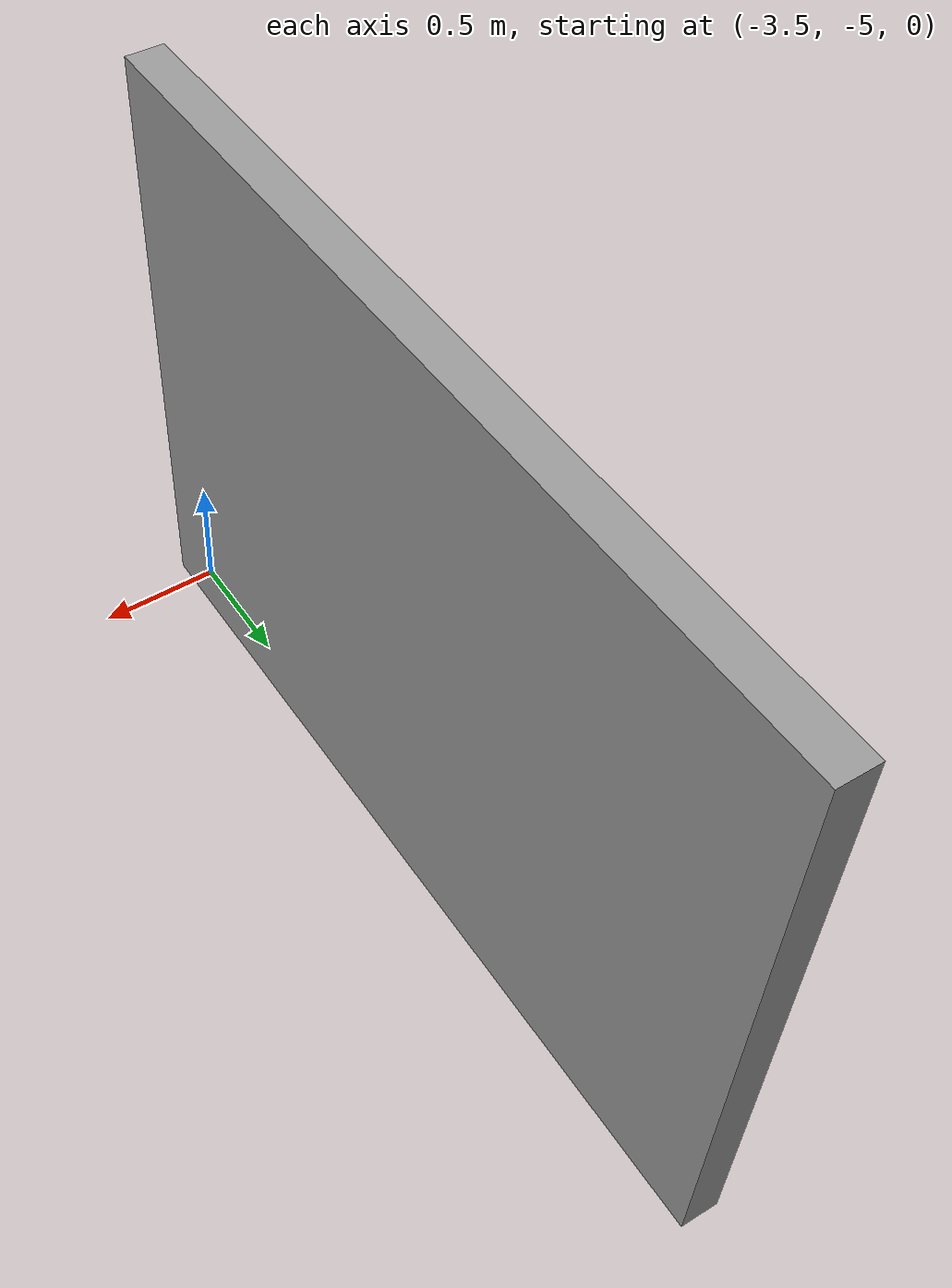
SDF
<?xml version='1.0'?>
<sdf version='1.6'>
  <model name='test'>
    <pose frame=''>-3.49 -3.355 0 0 -0 0</pose>
    <link name='Wall_0'>
      <collision name='Wall_0_Collision'>
        <geometry>
          <box>
            <size>3.5 0.15 2.5</size>
          </box>
        </geometry>
        <pose frame=''>0 0 1.25 0 -0 0</pose>
      </collision>
      <visual name='Wall_0_Visual'>
        <pose frame=''>0 0 1.25 0 -0 0</pose>
        <geometry>
          <box>
            <size>3.5 0.15 2.5</size>
          </box>
        </geometry>
        <material>
          <script>
            <uri>file://media/materials/scripts/gazebo.material</uri>
            <name>Gazebo/Grey</name>
          </script>
          <ambient>1 1 1 1</ambient>
        </material>
      </visual>
      <pose frame=''>0 0 0 0 0 -1.5708</pose>
    </link>
    <static>1</static>
  </model>
</sdf>
